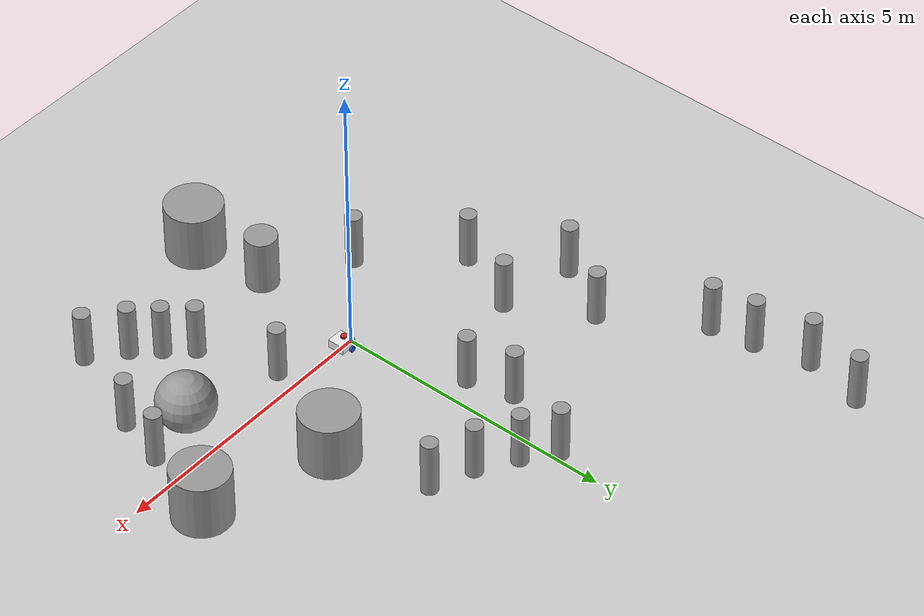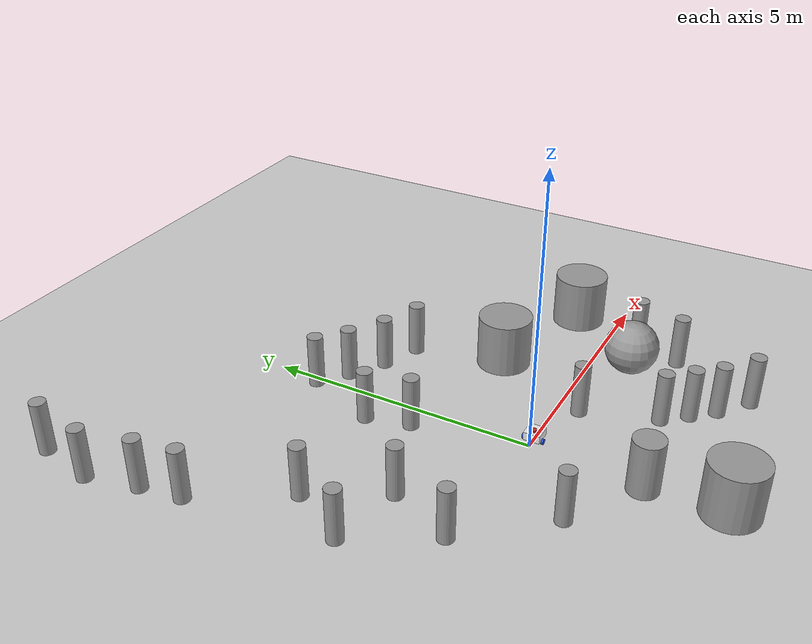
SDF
<sdf version="1.7">
 <world name="default">
  <light name="sun" type="directional">
   <pose>0 0 10 0 -0 0</pose>
   <diffuse>0.8 0.8 0.8 1</diffuse>
   <specular>0.2 0.2 0.2 1</specular>
   <attenuation>
    <range>1000</range>
    <constant>0.9</constant>
    <linear>0.01</linear>
    <quadratic>0.001</quadratic>
   </attenuation>
   <direction>-0.5 0.1 -0.9</direction>
   <spot><inner_angle>0</inner_angle><outer_angle>0</outer_angle><falloff>0</falloff></spot>
  </light>
  <model name="ground_plane">
   <static>1</static>
   <link name="link">
    <collision name="collision">
     <geometry><plane><normal>0 0 1</normal><size>100 100</size></plane></geometry>
     <surface>
      <contact><collide_bitmask>65535</collide_bitmask></contact>
      <friction><ode><mu>100</mu><mu2>50</mu2></ode></friction>
     </surface>
    </collision>
    <visual name="visual">
     <cast_shadows>0</cast_shadows>
     <geometry><plane><normal>0 0 1</normal><size>100 100</size></plane></geometry>
     <material>
      <script><uri>file://media/materials/scripts/gazebo.material</uri><name>Gazebo/Grey</name></script>
     </material>
    </visual>
   </link>
  </model>
  <gravity>0 0 -9.8</gravity>
  <magnetic_field>6e-06 2.3e-05 -4.2e-05</magnetic_field>
  <atmosphere type="adiabatic"/>
  <physics type="ode">
   <max_step_size>0.001</max_step_size>
   <real_time_factor>1</real_time_factor>
   <real_time_update_rate>1000</real_time_update_rate>
  </physics>
  <scene><ambient>0.4 0.4 0.4 1</ambient><background>0.7 0.7 0.7 1</background><shadows>1</shadows></scene>
  <spherical_coordinates>
   <surface_model>EARTH_WGS84</surface_model>
   <latitude_deg>0</latitude_deg>
   <longitude_deg>0</longitude_deg>
   <elevation>0</elevation>
   <heading_deg>0</heading_deg>
  </spherical_coordinates>
  <model name="my_bot">
   <link name="base_link">
    <inertial>
     <pose>0.055714 0 0.078571 0 -0 0</pose>
     <mass>0.7</mass>
     <inertia>
      <ixx>0.0064169</ixx>
      <ixy>0</ixy>
      <ixz>0.00118929</ixz>
      <iyy>0.00745405</iyy>
      <iyz>0</iyz>
      <izz>0.00876214</izz>
     </inertia>
    </inertial>
    <collision name="base_link_fixed_joint_lump__chassis_collision">
     <pose>0.05 0 0.075 0 -0 0</pose>
     <geometry><box><size>0.3 0.3 0.15</size></box></geometry>
    </collision>
    <collision name="base_link_fixed_joint_lump__caster_wheel_collision_1">
     <pose>0.14 0 0 0 -0 0</pose>
     <geometry><sphere><radius>0.05</radius></sphere></geometry>
     <surface><friction><ode><mu>0.0001</mu><mu2>0.0001</mu2></ode></friction></surface>
    </collision>
    <collision name="base_link_fixed_joint_lump__laser_frame_collision_2">
     <pose>0 0 0.175 0 -0 0</pose>
     <geometry><cylinder><length>0.04</length><radius>0.05</radius></cylinder></geometry>
    </collision>
    <visual name="base_link_fixed_joint_lump__chassis_visual">
     <pose>0.05 0 0.075 0 -0 0</pose>
     <geometry><box><size>0.3 0.3 0.15</size></box></geometry>
     <material>
      <script><name>Gazebo/White</name><uri>file://media/materials/scripts/gazebo.material</uri></script>
     </material>
    </visual>
    <visual name="base_link_fixed_joint_lump__caster_wheel_visual_1">
     <pose>0.14 0 0 0 -0 0</pose>
     <geometry><sphere><radius>0.05</radius></sphere></geometry>
     <material>
      <script><name>Gazebo/Black</name><uri>file://media/materials/scripts/gazebo.material</uri></script>
     </material>
    </visual>
    <visual name="base_link_fixed_joint_lump__laser_frame_visual_2">
     <pose>0 0 0.175 0 -0 0</pose>
     <geometry><cylinder><length>0.04</length><radius>0.05</radius></cylinder></geometry>
     <material>
      <script><name>Gazebo/Red</name><uri>file://media/materials/scripts/gazebo.material</uri></script>
     </material>
    </visual>
    <sensor name="laser" type="ray">
     <visualize>1</visualize>
     <update_rate>10</update_rate>
     <ray>
      <scan>
       <horizontal>
        <samples>360</samples>
        <resolution>1</resolution>
        <min_angle>-3.14</min_angle>
        <max_angle>3.14</max_angle>
       </horizontal>
       <vertical><samples>1</samples><min_angle>0</min_angle><max_angle>0</max_angle></vertical>
      </scan>
      <range><min>0.3</min><max>12</max><resolution>0.01</resolution></range>
     </ray>
     <plugin name="laser_controller" filename="libgazebo_ros_ray_sensor.so">
      <ros><argument>~/out:=scan</argument></ros>
      <output_type>sensor_msgs/LaserScan</output_type>
      <frame_name>laser_frame</frame_name>
     </plugin>
     <pose>0 0 0.175 0 -0 0</pose>
    </sensor>
   </link>
   <joint name="left_wheel_joint" type="revolute">
    <pose relative_to="base_link">0 0.175 0 -1.5708 0 0</pose>
    <parent>base_link</parent>
    <child>left_wheel</child>
    <axis>
     <xyz>0 0 1</xyz>
     <limit><lower>-1e+16</lower><upper>1e+16</upper></limit>
     <dynamics><spring_reference>0</spring_reference><spring_stiffness>0</spring_stiffness></dynamics>
    </axis>
   </joint>
   <link name="left_wheel">
    <pose relative_to="left_wheel_joint">0 0 0 0 -0 0</pose>
    <inertial>
     <mass>0.1</mass>
     <inertia>
      <ixx>7.58333e-05</ixx>
      <ixy>0</ixy>
      <ixz>0</ixz>
      <iyy>7.58333e-05</iyy>
      <iyz>0</iyz>
      <izz>0.000125</izz>
     </inertia>
    </inertial>
    <collision name="left_wheel_collision">
     <geometry><cylinder><length>0.04</length><radius>0.05</radius></cylinder></geometry>
    </collision>
    <visual name="left_wheel_visual">
     <geometry><cylinder><length>0.04</length><radius>0.05</radius></cylinder></geometry>
     <material>
      <script><name>Gazebo/Blue</name><uri>file://media/materials/scripts/gazebo.material</uri></script>
     </material>
    </visual>
   </link>
   <joint name="right_wheel_joint" type="revolute">
    <pose relative_to="base_link">0 -0.175 0 1.5708 -0 0</pose>
    <parent>base_link</parent>
    <child>right_wheel</child>
    <axis>
     <xyz>0 0 -1</xyz>
     <limit><lower>-1e+16</lower><upper>1e+16</upper></limit>
     <dynamics><spring_reference>0</spring_reference><spring_stiffness>0</spring_stiffness></dynamics>
    </axis>
   </joint>
   <link name="right_wheel">
    <pose relative_to="right_wheel_joint">0 0 0 0 -0 0</pose>
    <inertial>
     <mass>0.1</mass>
     <inertia>
      <ixx>7.58333e-05</ixx>
      <ixy>0</ixy>
      <ixz>0</ixz>
      <iyy>7.58333e-05</iyy>
      <iyz>0</iyz>
      <izz>0.000125</izz>
     </inertia>
    </inertial>
    <collision name="right_wheel_collision">
     <geometry><cylinder><length>0.04</length><radius>0.05</radius></cylinder></geometry>
    </collision>
    <visual name="right_wheel_visual">
     <geometry><cylinder><length>0.04</length><radius>0.05</radius></cylinder></geometry>
     <material>
      <script><name>Gazebo/Blue</name><uri>file://media/materials/scripts/gazebo.material</uri></script>
     </material>
    </visual>
   </link>
   <static>0</static>
   <plugin name="diff_drive" filename="libgazebo_ros_diff_drive.so">
    <left_joint>left_wheel_joint</left_joint>
    <right_joint>right_wheel_joint</right_joint>
    <wheel_separation>0.35</wheel_separation>
    <wheel_diameter>0.1</wheel_diameter>
    <max_wheel_torque>200</max_wheel_torque>
    <max_wheel_acceleration>10.0</max_wheel_acceleration>
    <odometry_frame>odom</odometry_frame>
    <robot_base_frame>base_link</robot_base_frame>
    <publish_odom>1</publish_odom>
    <publish_odom_tf>1</publish_odom_tf>
    <publish_wheel_tf>1</publish_wheel_tf>
   </plugin>
   <pose>0.168188 -6.9e-05 0.05 0 1.2e-05 0.001354</pose>
  </model>
  <model name="unit_cylinder">
   <pose>-0.154644 -2.02062 0.499998 0 -1e-06 0</pose>
   <link name="link">
    <inertial>
     <mass>1</mass>
     <inertia><ixx>0.145833</ixx><ixy>0</ixy><ixz>0</ixz><iyy>0.145833</iyy><iyz>0</iyz><izz>0.125</izz></inertia>
    </inertial>
    <collision name="collision">
     <geometry><cylinder><radius>0.277272</radius><length>1</length></cylinder></geometry>
    </collision>
    <visual name="visual">
     <geometry><cylinder><radius>0.277272</radius><length>1</length></cylinder></geometry>
     <material>
      <script><name>Gazebo/Grey</name><uri>file://media/materials/scripts/gazebo.material</uri></script>
     </material>
    </visual>
   </link>
  </model>
  <model name="unit_sphere">
   <pose>3.07121 -0.709049 0.5 0 -0 0</pose>
   <link name="link">
    <inertial>
     <mass>1</mass>
     <inertia><ixx>0.1</ixx><ixy>0</ixy><ixz>0</ixz><iyy>0.1</iyy><iyz>0</iyz><izz>0.1</izz></inertia>
    </inertial>
    <collision name="collision"><geometry><sphere><radius>0.5</radius></sphere></geometry></collision>
    <visual name="visual">
     <geometry><sphere><radius>0.5</radius></sphere></geometry>
     <material>
      <script><name>Gazebo/Grey</name><uri>file://media/materials/scripts/gazebo.material</uri></script>
     </material>
    </visual>
   </link>
  </model>
  <model name="unit_cylinder_0">
   <pose>3.02078 -2.95752 0.499999 0 -0 3e-06</pose>
   <link name="link">
    <inertial>
     <mass>1</mass>
     <inertia><ixx>0.145833</ixx><ixy>0</ixy><ixz>0</ixz><iyy>0.145833</iyy><iyz>0</iyz><izz>0.125</izz></inertia>
    </inertial>
    <collision name="collision">
     <geometry><cylinder><radius>0.144934</radius><length>1</length></cylinder></geometry>
    </collision>
    <visual name="visual">
     <geometry><cylinder><radius>0.144934</radius><length>1</length></cylinder></geometry>
     <material>
      <script><name>Gazebo/Grey</name><uri>file://media/materials/scripts/gazebo.material</uri></script>
     </material>
    </visual>
   </link>
  </model>
  <model name="unit_cylinder_1">
   <pose>2.1908 1.47215 0.499998 3e-06 -2e-06 0</pose>
   <link name="link">
    <inertial>
     <mass>1</mass>
     <inertia><ixx>0.145833</ixx><ixy>0</ixy><ixz>0</ixz><iyy>0.145833</iyy><iyz>0</iyz><izz>0.125</izz></inertia>
    </inertial>
    <collision name="collision">
     <geometry><cylinder><radius>0.5</radius><length>1</length></cylinder></geometry>
    </collision>
    <visual name="visual">
     <geometry><cylinder><radius>0.5</radius><length>1</length></cylinder></geometry>
     <material>
      <script><name>Gazebo/Grey</name><uri>file://media/materials/scripts/gazebo.material</uri></script>
     </material>
    </visual>
   </link>
  </model>
  <model name="unit_cylinder_2">
   <pose>-0.042792 -3.37758 0.499991 -2e-06 -1e-06 0</pose>
   <link name="link">
    <inertial>
     <mass>1</mass>
     <inertia><ixx>0.145833</ixx><ixy>0</ixy><ixz>0</ixz><iyy>0.145833</iyy><iyz>0</iyz><izz>0.125</izz></inertia>
    </inertial>
    <collision name="collision">
     <geometry><cylinder><radius>0.5</radius><length>1</length></cylinder></geometry>
    </collision>
    <visual name="visual">
     <geometry><cylinder><radius>0.5</radius><length>1</length></cylinder></geometry>
     <material>
      <script><name>Gazebo/Grey</name><uri>file://media/materials/scripts/gazebo.material</uri></script>
     </material>
    </visual>
   </link>
  </model>
  <model name="unit_cylinder_3">
   <pose>4.37958 0.8075 0.499991 -2e-06 -1e-06 0</pose>
   <link name="link">
    <inertial>
     <mass>1</mass>
     <inertia><ixx>0.145833</ixx><ixy>0</ixy><ixz>0</ixz><iyy>0.145833</iyy><iyz>0</iyz><izz>0.125</izz></inertia>
    </inertial>
    <collision name="collision">
     <geometry><cylinder><radius>0.5</radius><length>1</length></cylinder></geometry>
    </collision>
    <visual name="visual">
     <geometry><cylinder><radius>0.5</radius><length>1</length></cylinder></geometry>
     <material>
      <script><name>Gazebo/Grey</name><uri>file://media/materials/scripts/gazebo.material</uri></script>
     </material>
    </visual>
   </link>
  </model>
  <model name="unit_cylinder_0_clone">
   <pose>-1.46473 -1.19485 0.499992 0 -0 0</pose>
   <link name="link">
    <inertial>
     <mass>1</mass>
     <inertia><ixx>0.145833</ixx><ixy>0</ixy><ixz>0</ixz><iyy>0.145833</iyy><iyz>0</iyz><izz>0.125</izz></inertia>
    </inertial>
    <collision name="collision">
     <geometry><cylinder><radius>0.144934</radius><length>1</length></cylinder></geometry>
    </collision>
    <visual name="visual">
     <geometry><cylinder><radius>0.144934</radius><length>1</length></cylinder></geometry>
     <material>
      <script><name>Gazebo/Grey</name><uri>file://media/materials/scripts/gazebo.material</uri></script>
     </material>
    </visual>
   </link>
  </model>
  <model name="unit_cylinder_0_clone_0">
   <pose>-2.67489 0.203389 0.499999 0 -0 0</pose>
   <link name="link">
    <inertial>
     <mass>1</mass>
     <inertia><ixx>0.145833</ixx><ixy>0</ixy><ixz>0</ixz><iyy>0.145833</iyy><iyz>0</iyz><izz>0.125</izz></inertia>
    </inertial>
    <collision name="collision">
     <geometry><cylinder><radius>0.144934</radius><length>1</length></cylinder></geometry>
    </collision>
    <visual name="visual">
     <geometry><cylinder><radius>0.144934</radius><length>1</length></cylinder></geometry>
     <material>
      <script><name>Gazebo/Grey</name><uri>file://media/materials/scripts/gazebo.material</uri></script>
     </material>
    </visual>
   </link>
  </model>
  <model name="unit_cylinder_0_clone_1">
   <pose>-2.18482 1.34862 0.499992 0 -0 1e-06</pose>
   <link name="link">
    <inertial>
     <mass>1</mass>
     <inertia><ixx>0.145833</ixx><ixy>0</ixy><ixz>0</ixz><iyy>0.145833</iyy><iyz>0</iyz><izz>0.125</izz></inertia>
    </inertial>
    <collision name="collision">
     <geometry><cylinder><radius>0.144934</radius><length>1</length></cylinder></geometry>
    </collision>
    <visual name="visual">
     <geometry><cylinder><radius>0.144934</radius><length>1</length></cylinder></geometry>
     <material>
      <script><name>Gazebo/Grey</name><uri>file://media/materials/scripts/gazebo.material</uri></script>
     </material>
    </visual>
   </link>
  </model>
  <model name="unit_cylinder_0_clone_2">
   <pose>-3.49929 1.63711 0.499999 0 -0 1e-06</pose>
   <link name="link">
    <inertial>
     <mass>1</mass>
     <inertia><ixx>0.145833</ixx><ixy>0</ixy><ixz>0</ixz><iyy>0.145833</iyy><iyz>0</iyz><izz>0.125</izz></inertia>
    </inertial>
    <collision name="collision">
     <geometry><cylinder><radius>0.144934</radius><length>1</length></cylinder></geometry>
    </collision>
    <visual name="visual">
     <geometry><cylinder><radius>0.144934</radius><length>1</length></cylinder></geometry>
     <material>
      <script><name>Gazebo/Grey</name><uri>file://media/materials/scripts/gazebo.material</uri></script>
     </material>
    </visual>
   </link>
  </model>
  <model name="unit_cylinder_0_clone_3">
   <pose>-2.91671 2.65986 0.499999 0 -0 1e-06</pose>
   <link name="link">
    <inertial>
     <mass>1</mass>
     <inertia><ixx>0.145833</ixx><ixy>0</ixy><ixz>0</ixz><iyy>0.145833</iyy><iyz>0</iyz><izz>0.125</izz></inertia>
    </inertial>
    <collision name="collision">
     <geometry><cylinder><radius>0.144934</radius><length>1</length></cylinder></geometry>
    </collision>
    <visual name="visual">
     <geometry><cylinder><radius>0.144934</radius><length>1</length></cylinder></geometry>
     <material>
      <script><name>Gazebo/Grey</name><uri>file://media/materials/scripts/gazebo.material</uri></script>
     </material>
    </visual>
   </link>
  </model>
  <model name="unit_cylinder_0_clone_4">
   <pose>-3.87256 4.23882 0.499992 0 -0 1e-06</pose>
   <link name="link">
    <inertial>
     <mass>1</mass>
     <inertia><ixx>0.145833</ixx><ixy>0</ixy><ixz>0</ixz><iyy>0.145833</iyy><iyz>0</iyz><izz>0.125</izz></inertia>
    </inertial>
    <collision name="collision">
     <geometry><cylinder><radius>0.144934</radius><length>1</length></cylinder></geometry>
    </collision>
    <visual name="visual">
     <geometry><cylinder><radius>0.144934</radius><length>1</length></cylinder></geometry>
     <material>
      <script><name>Gazebo/Grey</name><uri>file://media/materials/scripts/gazebo.material</uri></script>
     </material>
    </visual>
   </link>
  </model>
  <model name="unit_cylinder_0_clone_5">
   <pose>-4 5 0.499991 0 -0 1e-06</pose>
   <link name="link">
    <inertial>
     <mass>1</mass>
     <inertia><ixx>0.145833</ixx><ixy>0</ixy><ixz>0</ixz><iyy>0.145833</iyy><iyz>0</iyz><izz>0.125</izz></inertia>
    </inertial>
    <collision name="collision">
     <geometry><cylinder><radius>0.144934</radius><length>1</length></cylinder></geometry>
    </collision>
    <visual name="visual">
     <geometry><cylinder><radius>0.144934</radius><length>1</length></cylinder></geometry>
     <material>
      <script><name>Gazebo/Grey</name><uri>file://media/materials/scripts/gazebo.material</uri></script>
     </material>
    </visual>
   </link>
  </model>
  <model name="unit_cylinder_0_clone_6">
   <pose>-4.22824 5.94824 0.499999 0 -0 0</pose>
   <link name="link">
    <inertial>
     <mass>1</mass>
     <inertia><ixx>0.145833</ixx><ixy>0</ixy><ixz>0</ixz><iyy>0.145833</iyy><iyz>0</iyz><izz>0.125</izz></inertia>
    </inertial>
    <collision name="collision">
     <geometry><cylinder><radius>0.144934</radius><length>1</length></cylinder></geometry>
    </collision>
    <visual name="visual">
     <geometry><cylinder><radius>0.144934</radius><length>1</length></cylinder></geometry>
     <material>
      <script><name>Gazebo/Grey</name><uri>file://media/materials/scripts/gazebo.material</uri></script>
     </material>
    </visual>
   </link>
  </model>
  <model name="unit_cylinder_0_clone_7">
   <pose>-4.00033 7.00033 0.499999 0 0 -0.000105</pose>
   <link name="link">
    <inertial>
     <mass>1</mass>
     <inertia><ixx>0.145833</ixx><ixy>0</ixy><ixz>0</ixz><iyy>0.145833</iyy><iyz>0</iyz><izz>0.125</izz></inertia>
    </inertial>
    <collision name="collision">
     <geometry><cylinder><radius>0.144934</radius><length>1</length></cylinder></geometry>
    </collision>
    <visual name="visual">
     <geometry><cylinder><radius>0.144934</radius><length>1</length></cylinder></geometry>
     <material>
      <script><name>Gazebo/Grey</name><uri>file://media/materials/scripts/gazebo.material</uri></script>
     </material>
    </visual>
   </link>
  </model>
  <model name="unit_cylinder_0_clone_8">
   <pose>-0.126054 4.17108 0.499999 0 -0 3e-06</pose>
   <link name="link">
    <inertial>
     <mass>1</mass>
     <inertia><ixx>0.145833</ixx><ixy>0</ixy><ixz>0</ixz><iyy>0.145833</iyy><iyz>0</iyz><izz>0.125</izz></inertia>
    </inertial>
    <collision name="collision">
     <geometry><cylinder><radius>0.144934</radius><length>1</length></cylinder></geometry>
    </collision>
    <visual name="visual">
     <geometry><cylinder><radius>0.144934</radius><length>1</length></cylinder></geometry>
     <material>
      <script><name>Gazebo/Grey</name><uri>file://media/materials/scripts/gazebo.material</uri></script>
     </material>
    </visual>
   </link>
  </model>
  <model name="unit_cylinder_0_clone_9">
   <pose>0.376122 3.77573 0.499999 0 -0 3e-06</pose>
   <link name="link">
    <inertial>
     <mass>1</mass>
     <inertia><ixx>0.145833</ixx><ixy>0</ixy><ixz>0</ixz><iyy>0.145833</iyy><iyz>0</iyz><izz>0.125</izz></inertia>
    </inertial>
    <collision name="collision">
     <geometry><cylinder><radius>0.144934</radius><length>1</length></cylinder></geometry>
    </collision>
    <visual name="visual">
     <geometry><cylinder><radius>0.144934</radius><length>1</length></cylinder></geometry>
     <material>
      <script><name>Gazebo/Grey</name><uri>file://media/materials/scripts/gazebo.material</uri></script>
     </material>
    </visual>
   </link>
  </model>
  <model name="unit_cylinder_0_clone_10">
   <pose>1.01099 3.38891 0.499991 0 -0 3e-06</pose>
   <link name="link">
    <inertial>
     <mass>1</mass>
     <inertia><ixx>0.145833</ixx><ixy>0</ixy><ixz>0</ixz><iyy>0.145833</iyy><iyz>0</iyz><izz>0.125</izz></inertia>
    </inertial>
    <collision name="collision">
     <geometry><cylinder><radius>0.144934</radius><length>1</length></cylinder></geometry>
    </collision>
    <visual name="visual">
     <geometry><cylinder><radius>0.144934</radius><length>1</length></cylinder></geometry>
     <material>
      <script><name>Gazebo/Grey</name><uri>file://media/materials/scripts/gazebo.material</uri></script>
     </material>
    </visual>
   </link>
  </model>
  <model name="unit_cylinder_0_clone_11">
   <pose>1.74033 3.1058 0.499999 0 -0 3e-06</pose>
   <link name="link">
    <inertial>
     <mass>1</mass>
     <inertia><ixx>0.145833</ixx><ixy>0</ixy><ixz>0</ixz><iyy>0.145833</iyy><iyz>0</iyz><izz>0.125</izz></inertia>
    </inertial>
    <collision name="collision">
     <geometry><cylinder><radius>0.144934</radius><length>1</length></cylinder></geometry>
    </collision>
    <visual name="visual">
     <geometry><cylinder><radius>0.144934</radius><length>1</length></cylinder></geometry>
     <material>
      <script><name>Gazebo/Grey</name><uri>file://media/materials/scripts/gazebo.material</uri></script>
     </material>
    </visual>
   </link>
  </model>
  <model name="unit_cylinder_0_clone_12">
   <pose>-0.653735 2.81905 0.499999 0 -0 2e-06</pose>
   <link name="link">
    <inertial>
     <mass>1</mass>
     <inertia><ixx>0.145833</ixx><ixy>0</ixy><ixz>0</ixz><iyy>0.145833</iyy><iyz>0</iyz><izz>0.125</izz></inertia>
    </inertial>
    <collision name="collision">
     <geometry><cylinder><radius>0.144934</radius><length>1</length></cylinder></geometry>
    </collision>
    <visual name="visual">
     <geometry><cylinder><radius>0.144934</radius><length>1</length></cylinder></geometry>
     <material>
      <script><name>Gazebo/Grey</name><uri>file://media/materials/scripts/gazebo.material</uri></script>
     </material>
    </visual>
   </link>
  </model>
  <model name="unit_cylinder_0_clone_13">
   <pose>-0.453775 2.02123 0.499999 0 -0 3e-06</pose>
   <link name="link">
    <inertial>
     <mass>1</mass>
     <inertia><ixx>0.145833</ixx><ixy>0</ixy><ixz>0</ixz><iyy>0.145833</iyy><iyz>0</iyz><izz>0.125</izz></inertia>
    </inertial>
    <collision name="collision">
     <geometry><cylinder><radius>0.144934</radius><length>1</length></cylinder></geometry>
    </collision>
    <visual name="visual">
     <geometry><cylinder><radius>0.144934</radius><length>1</length></cylinder></geometry>
     <material>
      <script><name>Gazebo/Grey</name><uri>file://media/materials/scripts/gazebo.material</uri></script>
     </material>
    </visual>
   </link>
  </model>
  <model name="unit_cylinder_0_clone_14">
   <pose>2.10918 -2.11714 0.499999 0 -0 3e-06</pose>
   <link name="link">
    <inertial>
     <mass>1</mass>
     <inertia><ixx>0.145833</ixx><ixy>0</ixy><ixz>0</ixz><iyy>0.145833</iyy><iyz>0</iyz><izz>0.125</izz></inertia>
    </inertial>
    <collision name="collision">
     <geometry><cylinder><radius>0.144934</radius><length>1</length></cylinder></geometry>
    </collision>
    <visual name="visual">
     <geometry><cylinder><radius>0.144934</radius><length>1</length></cylinder></geometry>
     <material>
      <script><name>Gazebo/Grey</name><uri>file://media/materials/scripts/gazebo.material</uri></script>
     </material>
    </visual>
   </link>
  </model>
  <model name="unit_cylinder_0_clone_15">
   <pose>1.75372 -1.70744 0.499999 0 -0 3e-06</pose>
   <link name="link">
    <inertial>
     <mass>1</mass>
     <inertia><ixx>0.145833</ixx><ixy>0</ixy><ixz>0</ixz><iyy>0.145833</iyy><iyz>0</iyz><izz>0.125</izz></inertia>
    </inertial>
    <collision name="collision">
     <geometry><cylinder><radius>0.144934</radius><length>1</length></cylinder></geometry>
    </collision>
    <visual name="visual">
     <geometry><cylinder><radius>0.144934</radius><length>1</length></cylinder></geometry>
     <material>
      <script><name>Gazebo/Grey</name><uri>file://media/materials/scripts/gazebo.material</uri></script>
     </material>
    </visual>
   </link>
  </model>
  <model name="unit_cylinder_0_clone_16">
   <pose>2.46121 -2.51349 0.499991 0 -0 3e-06</pose>
   <link name="link">
    <inertial>
     <mass>1</mass>
     <inertia><ixx>0.145833</ixx><ixy>0</ixy><ixz>0</ixz><iyy>0.145833</iyy><iyz>0</iyz><izz>0.125</izz></inertia>
    </inertial>
    <collision name="collision">
     <geometry><cylinder><radius>0.144934</radius><length>1</length></cylinder></geometry>
    </collision>
    <visual name="visual">
     <geometry><cylinder><radius>0.144934</radius><length>1</length></cylinder></geometry>
     <material>
      <script><name>Gazebo/Grey</name><uri>file://media/materials/scripts/gazebo.material</uri></script>
     </material>
    </visual>
   </link>
  </model>
  <model name="unit_cylinder_0_clone_17">
   <pose>3.68739 -1.43039 0.499999 0 -0 3e-06</pose>
   <link name="link">
    <inertial>
     <mass>1</mass>
     <inertia><ixx>0.145833</ixx><ixy>0</ixy><ixz>0</ixz><iyy>0.145833</iyy><iyz>0</iyz><izz>0.125</izz></inertia>
    </inertial>
    <collision name="collision">
     <geometry><cylinder><radius>0.144934</radius><length>1</length></cylinder></geometry>
    </collision>
    <visual name="visual">
     <geometry><cylinder><radius>0.144934</radius><length>1</length></cylinder></geometry>
     <material>
      <script><name>Gazebo/Grey</name><uri>file://media/materials/scripts/gazebo.material</uri></script>
     </material>
    </visual>
   </link>
  </model>
  <model name="unit_cylinder_0_clone_18">
   <pose>3.95776 -0.560119 0.499991 0 -0 3e-06</pose>
   <link name="link">
    <inertial>
     <mass>1</mass>
     <inertia><ixx>0.145833</ixx><ixy>0</ixy><ixz>0</ixz><iyy>0.145833</iyy><iyz>0</iyz><izz>0.125</izz></inertia>
    </inertial>
    <collision name="collision">
     <geometry><cylinder><radius>0.144934</radius><length>1</length></cylinder></geometry>
    </collision>
    <visual name="visual">
     <geometry><cylinder><radius>0.144934</radius><length>1</length></cylinder></geometry>
     <material>
      <script><name>Gazebo/Grey</name><uri>file://media/materials/scripts/gazebo.material</uri></script>
     </material>
    </visual>
   </link>
  </model>
  <model name="unit_cylinder_0_clone_19">
   <pose>1.31917 -0.378738 0.499991 0 -0 3e-06</pose>
   <link name="link">
    <inertial>
     <mass>1</mass>
     <inertia><ixx>0.145833</ixx><ixy>0</ixy><ixz>0</ixz><iyy>0.145833</iyy><iyz>0</iyz><izz>0.125</izz></inertia>
    </inertial>
    <collision name="collision">
     <geometry><cylinder><radius>0.144934</radius><length>1</length></cylinder></geometry>
    </collision>
    <visual name="visual">
     <geometry><cylinder><radius>0.144934</radius><length>1</length></cylinder></geometry>
     <material>
      <script><name>Gazebo/Grey</name><uri>file://media/materials/scripts/gazebo.material</uri></script>
     </material>
    </visual>
   </link>
  </model>
 </world>
</sdf>
